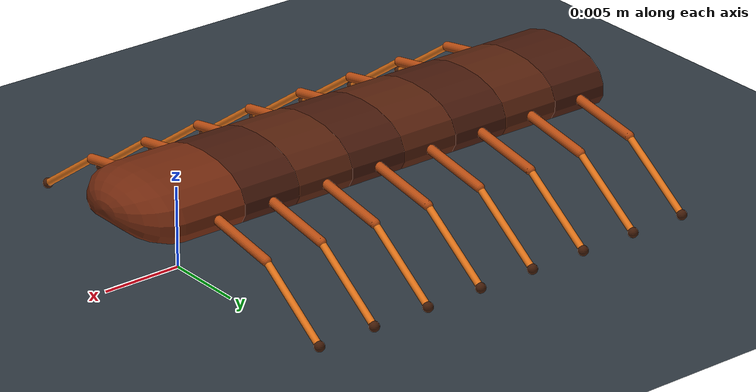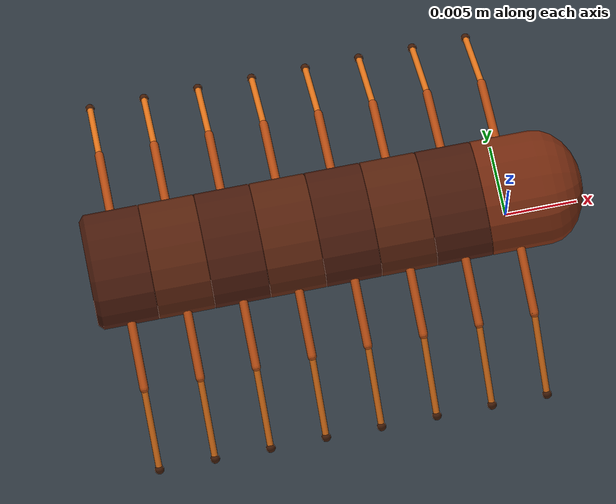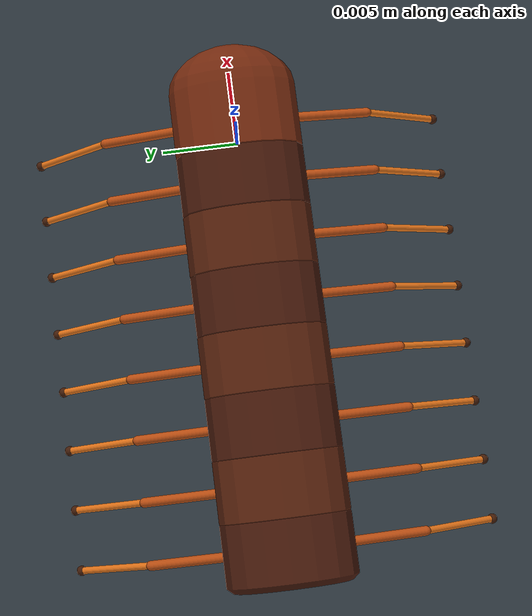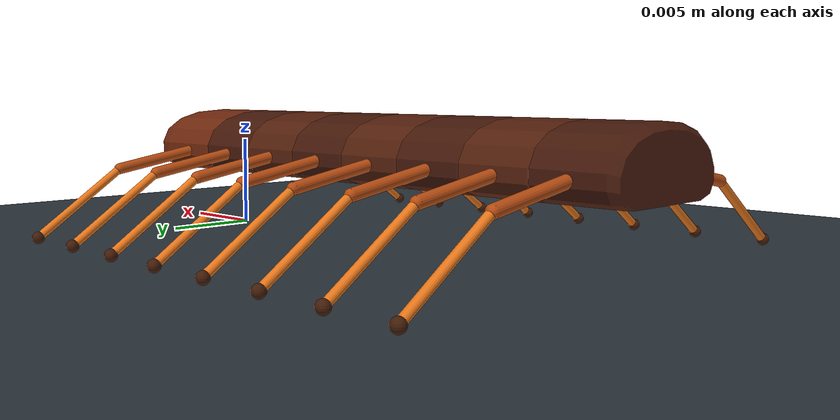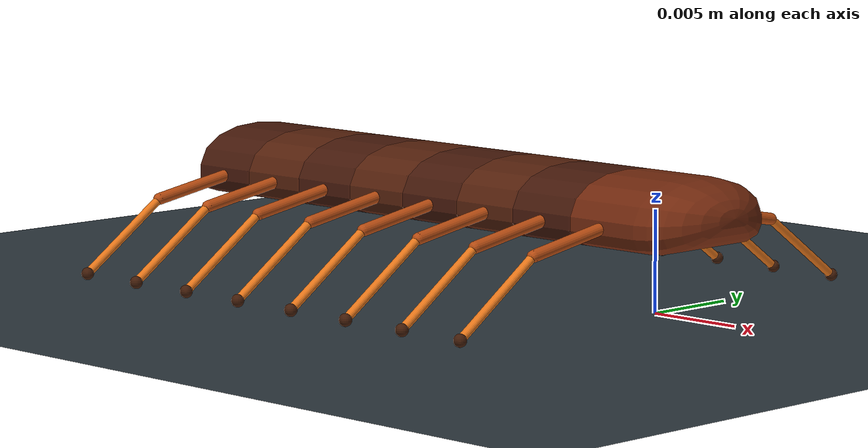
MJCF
<mujoco model="centipede_8">
  <!-- Assembly review; edit configs/assembly.json. -->
  <compiler angle="degree" autolimits="true" />
  <option timestep="0.0001" integrator="implicitfast" gravity="0 0 -9.81" iterations="80" tolerance="1e-10" cone="elliptic" />
  <size nuser_geom="2" nuser_actuator="1" />
  <statistic center="-0.0133 0 0.003" extent="0.035" />
  <custom>
    <text name="model_config" data="{&quot;segments&quot;:8,&quot;body&quot;:{&quot;shape&quot;:&quot;rounded_head&quot;,&quot;width_m&quot;:0.008,&quot;length_m&quot;:0.0044,&quot;height_m&quot;:0.0034,&quot;mass_kg&quot;:7.3e-05,&quot;head_mass_kg&quot;:9e-05,&quot;shoulder_y_m&quot;:0.0039,&quot;shoulder_z_m&quot;:-0.0006,&quot;front_extension_m&quot;:0.0028,&quot;pitch_m&quot;:0.0038,&quot;visual_membrane&quot;:true},&quot;leg&quot;:{&quot;upper_length_m&quot;:0.0046,&quot;lower_length_m&quot;:0.0058,&quot;upper_radius_m&quot;:0.0003,&quot;lower_radius_m&quot;:0.00022,&quot;foot_radius_m&quot;:0.00032,&quot;upper_mass_kg&quot;:1.5e-06,&quot;lower_mass_kg&quot;:1e-06,&quot;foot_mass_kg&quot;:1.5e-07,&quot;upper_down_deg&quot;:10,&quot;lower_down_deg&quot;:35,&quot;sweep_range_deg&quot;:[-40,40],&quot;lift_range_deg&quot;:[-25,40],&quot;knee_range_deg&quot;:[-20,50],&quot;torque_nm&quot;:{&quot;sweep&quot;:8e-06,&quot;lift&quot;:1.8e-05,&quot;knee&quot;:1e-05},&quot;damping_nms&quot;:{&quot;sweep&quot;:2e-07,&quot;lift&quot;:2e-07,&quot;knee&quot;:1e-07},&quot;armature_kgm2&quot;:{&quot;sweep&quot;:2e-11,&quot;lift&quot;:2e-11,&quot;knee&quot;:2e-12}},&quot;physics&quot;:{&quot;timestep_s&quot;:0.0001,&quot;gravity_m_s2&quot;:9.81,&quot;self_friction&quot;:[0.8,0.0001,1e-05],&quot;ground_friction&quot;:[0.8,0.0001,1e-05],&quot;contact_timeconst_s&quot;:0.0003,&quot;limit_timeconst_s&quot;:0.0008,&quot;contact_dampratio&quot;:1.0,&quot;spawn_gap_m&quot;:5e-05},&quot;spine&quot;:{&quot;yaw_range_deg&quot;:[-15,15],&quot;pitch_range_deg&quot;:[-8,8],&quot;active_yaw&quot;:true,&quot;yaw_torque_nm&quot;:1.5e-05,&quot;yaw_stiffness_nm_rad&quot;:2e-05,&quot;yaw_damping_nms&quot;:3e-07,&quot;pitch_stiffness_nm_rad&quot;:0.0001,&quot;pitch_damping_nms&quot;:5e-07,&quot;armature_kgm2&quot;:2e-11}}" />
  </custom>
  <default>
    <joint limited="true" solreflimit="0.0008 1" solimplimit="0.95 0.99 0.001" />
    <geom friction="0.8 0.0001 1e-05" condim="3" solref="0.0003 1" solimp="0.95 0.99 0.0001" margin="0" contype="1" conaffinity="1" />
  </default>
  <visual>
    <global offwidth="1200" offheight="900" />
    <map znear="0.005" zfar="30" />
    <scale jointlength="0.3" jointwidth="0.015" />
  </visual>
  <asset>
    <mesh name="head_envelope" inertia="convex" vertex="-0.0022 0 0.00136 -0.0022 0.001296 0.0012682 -0.0022 0.002448 0.0009316 -0.0022 0.00324 0.0003808 -0.0022 0.0036 -0.0003536 -0.0022 0.0036 -0.0009656 -0.0022 0.003312 -0.0014552 -0.0022 0.00252 -0.0017 -0.0022 -0.00252 -0.0017 -0.0022 -0.003312 -0.0014552 -0.0022 -0.0036 -0.0009656 -0.0022 -0.0036 -0.0003536 -0.0022 -0.00324 0.0003808 -0.0022 -0.002448 0.0009316 -0.0022 -0.001296 0.0012682 -0.001848 0 0.0017 -0.001848 0.00144 0.001598 -0.001848 0.00272 0.001224 -0.001848 0.0036 0.000612 -0.001848 0.004 -0.000204 -0.001848 0.004 -0.000884 -0.001848 0.00368 -0.001428 -0.001848 0.0028 -0.0017 -0.001848 -0.0028 -0.0017 -0.001848 -0.00368 -0.001428 -0.001848 -0.004 -0.000884 -0.001848 -0.004 -0.000204 -0.001848 -0.0036 0.000612 -0.001848 -0.00272 0.001224 -0.001848 -0.00144 0.001598 0.0022 0 0.0017 0.0022 0.00144 0.001598 0.0022 0.00272 0.001224 0.0022 0.0036 0.000612 0.0022 0.004 -0.000204 0.0022 0.004 -0.000884 0.0022 0.00368 -0.001428 0.0022 0.0028 -0.0017 0.0022 -0.0028 -0.0017 0.0022 -0.00368 -0.001428 0.0022 -0.004 -0.000884 0.0022 -0.004 -0.000204 0.0022 -0.0036 0.000612 0.0022 -0.00272 0.001224 0.0022 -0.00144 0.001598 0.00292469332629 0 0.00164207390469 0.00292469332629 0.00139093318986 0.00154354947041 0.00292469332629 0.00262731824751 0.00118229321138 0.00292469332629 0.00347733297464 0.000591146605689 0.00292469332629 0.00386370330516 -0.000197048868563 0.00292469332629 0.00386370330516 -0.00085387843044 0.00292469332629 0.00355460704074 -0.00137934207994 0.00292469332629 0.00270459231361 -0.00164207390469 0.00292469332629 -0.00270459231361 -0.00164207390469 0.00292469332629 -0.00355460704074 -0.00137934207994 0.00292469332629 -0.00386370330516 -0.00085387843044 0.00292469332629 -0.00386370330516 -0.000197048868563 0.00292469332629 -0.00347733297464 0.000591146605689 0.00292469332629 -0.00262731824751 0.00118229321138 0.00292469332629 -0.00139093318986 0.00154354947041 0.0036 0 0.00147224318643 0.0036 0.00124707658145 0.00138390859525 0.0036 0.00235558909829 0.00106001509423 0.0036 0.00311769145362 0.000530007547116 0.0036 0.00346410161514 -0.000176669182372 0.0036 0.00346410161514 -0.000765566456945 0.0036 0.00318697348593 -0.0012366842766 0.0036 0.0024248711306 -0.00147224318643 0.0036 -0.0024248711306 -0.00147224318643 0.0036 -0.00318697348593 -0.0012366842766 0.0036 -0.00346410161514 -0.000765566456945 0.0036 -0.00346410161514 -0.000176669182372 0.0036 -0.00311769145362 0.000530007547116 0.0036 -0.00235558909829 0.00106001509423 0.0036 -0.00124707658145 0.00138390859525 0.00417989898732 0 0.00120208152802 0.00417989898732 0.00101823376491 0.00112995663634 0.00417989898732 0.00192333044483 0.000865498700172 0.00417989898732 0.00254558441227 0.000432749350086 0.00417989898732 0.00282842712475 -0.000144249783362 0.00417989898732 0.00282842712475 -0.000625082394569 0.00417989898732 0.00260215295477 -0.00100974848353 0.00417989898732 0.00197989898732 -0.00120208152802 0.00417989898732 -0.00197989898732 -0.00120208152802 0.00417989898732 -0.00260215295477 -0.00100974848353 0.00417989898732 -0.00282842712475 -0.000625082394569 0.00417989898732 -0.00282842712475 -0.000144249783362 0.00417989898732 -0.00254558441227 0.000432749350086 0.00417989898732 -0.00192333044483 0.000865498700172 0.00417989898732 -0.00101823376491 0.00112995663634 0.0046248711306 0 0.00085 0.0046248711306 0.00072 0.000799 0.0046248711306 0.00136 0.000612 0.0046248711306 0.0018 0.000306 0.0046248711306 0.002 -0.000102 0.0046248711306 0.002 -0.000442 0.0046248711306 0.00184 -0.000714 0.0046248711306 0.0014 -0.00085 0.0046248711306 -0.0014 -0.00085 0.0046248711306 -0.00184 -0.000714 0.0046248711306 -0.002 -0.000442 0.0046248711306 -0.002 -0.000102 0.0046248711306 -0.0018 0.000306 0.0046248711306 -0.00136 0.000612 0.0046248711306 -0.00072 0.000799 0.00490459231361 0 0.000439992376674 0.00490459231361 0.000372699424948 0.000413592834074 0.00490459231361 0.000703987802679 0.000316794511205 0.00490459231361 0.000931748562369 0.000158397255603 0.00490459231361 0.00103527618041 -5.27990852009e-05 0.00490459231361 0.00103527618041 -0.000228796035871 0.00490459231361 0.000952454085977 -0.000369593596406 0.00490459231361 0.000724693326287 -0.000439992376674 0.00490459231361 -0.000724693326287 -0.000439992376674 0.00490459231361 -0.000952454085977 -0.000369593596406 0.00490459231361 -0.00103527618041 -0.000228796035871 0.00490459231361 -0.00103527618041 -5.27990852009e-05 0.00490459231361 -0.000931748562369 0.000158397255603 0.00490459231361 -0.000703987802679 0.000316794511205 0.00490459231361 -0.000372699424948 0.000413592834074 0.005 0 0" smoothnormal="true" />
    <mesh name="trunk_envelope" inertia="convex" vertex="-0.0022 0 0.00136 -0.0022 0.001296 0.0012682 -0.0022 0.002448 0.0009316 -0.0022 0.00324 0.0003808 -0.0022 0.0036 -0.0003536 -0.0022 0.0036 -0.0009656 -0.0022 0.003312 -0.0014552 -0.0022 0.00252 -0.0017 -0.0022 -0.00252 -0.0017 -0.0022 -0.003312 -0.0014552 -0.0022 -0.0036 -0.0009656 -0.0022 -0.0036 -0.0003536 -0.0022 -0.00324 0.0003808 -0.0022 -0.002448 0.0009316 -0.0022 -0.001296 0.0012682 -0.001848 0 0.0017 -0.001848 0.00144 0.001598 -0.001848 0.00272 0.001224 -0.001848 0.0036 0.000612 -0.001848 0.004 -0.000204 -0.001848 0.004 -0.000884 -0.001848 0.00368 -0.001428 -0.001848 0.0028 -0.0017 -0.001848 -0.0028 -0.0017 -0.001848 -0.00368 -0.001428 -0.001848 -0.004 -0.000884 -0.001848 -0.004 -0.000204 -0.001848 -0.0036 0.000612 -0.001848 -0.00272 0.001224 -0.001848 -0.00144 0.001598 0.001848 0 0.0017 0.001848 0.00144 0.001598 0.001848 0.00272 0.001224 0.001848 0.0036 0.000612 0.001848 0.004 -0.000204 0.001848 0.004 -0.000884 0.001848 0.00368 -0.001428 0.001848 0.0028 -0.0017 0.001848 -0.0028 -0.0017 0.001848 -0.00368 -0.001428 0.001848 -0.004 -0.000884 0.001848 -0.004 -0.000204 0.001848 -0.0036 0.000612 0.001848 -0.00272 0.001224 0.001848 -0.00144 0.001598 0.0022 0 0.00136 0.0022 0.001296 0.0012682 0.0022 0.002448 0.0009316 0.0022 0.00324 0.0003808 0.0022 0.0036 -0.0003536 0.0022 0.0036 -0.0009656 0.0022 0.003312 -0.0014552 0.0022 0.00252 -0.0017 0.0022 -0.00252 -0.0017 0.0022 -0.003312 -0.0014552 0.0022 -0.0036 -0.0009656 0.0022 -0.0036 -0.0003536 0.0022 -0.00324 0.0003808 0.0022 -0.002448 0.0009316 0.0022 -0.001296 0.0012682" smoothnormal="true" />
    <texture type="skybox" builtin="gradient" width="256" height="1536" rgb1="0.10 0.15 0.20" rgb2="0.35 0.40 0.44" />
    <texture name="ground" type="2d" builtin="checker" width="512" height="512" rgb1="0.16 0.20 0.23" rgb2="0.20 0.24 0.27" />
    <material name="ground" texture="ground" texrepeat="80 80" reflectance="0" />
  </asset>
  <worldbody>
    <light pos="0.02 -0.02 0.1" dir="0 0 -1" diffuse="0.9 0.9 0.9" directional="true" castshadow="false" />
    <geom name="floor" type="plane" size="0.5 0.5 0.001" material="ground" user="-1 0" friction="0.8 0.0001 1e-05" condim="6" priority="1" />
    <body name="segment_00" pos="0 0 0.0050955249481">
      <freejoint name="root" />
      <geom name="segment_00_body" type="mesh" pos="0 0 0" mass="9e-05" rgba="0.45 0.16 0.055 1" user="0 1" mesh="head_envelope" />
      <site name="segment_00_center" pos="0 0 0" size="0.00015" rgba="0 0 0 0" group="3" />
      <site name="head_tip" pos="0.005 0 0" size="0.00025" rgba="0 0 0 0" />
      <body name="segment_00_left_upper" pos="0 0.0039 -0.0006">
        <joint name="segment_00_left_sweep" type="hinge" axis="0 0 -1" range="-40 40" damping="2e-07" armature="2e-11" />
        <joint name="segment_00_left_lift" type="hinge" axis="1 0 0" range="-25 40" damping="2e-07" armature="2e-11" />
        <geom name="segment_00_left_upper_geom" type="capsule" fromto="0 0 0 0 0.00453011566386 -0.000798781617268" size="0.0003" mass="1.5e-06" rgba="0.72 0.30 0.07 1" user="0 2" />
        <body name="segment_00_left_lower" pos="0 0.00453011566386 -0.000798781617268">
          <joint name="segment_00_left_knee" type="hinge" axis="-1 0 0" range="-20 50" damping="1e-07" armature="2e-12" />
          <geom name="segment_00_left_lower_geom" type="capsule" fromto="0 0 0 0 0.00475108185688 -0.00332674333084" size="0.00022" mass="1e-06" rgba="0.90 0.46 0.10 1" user="0 2" />
          <geom name="segment_00_left_foot" type="sphere" pos="0 0.00475108185688 -0.00332674333084" size="0.00032" mass="1.5e-07" rgba="0.26 0.11 0.035 1" user="0 3" />
          <site name="segment_00_left_tip" pos="0 0.00475108185688 -0.00332674333084" size="0.00015" rgba="0 0 0 0" group="3" />
        </body>
      </body>
      <body name="segment_00_right_upper" pos="0 -0.0039 -0.0006">
        <joint name="segment_00_right_sweep" type="hinge" axis="0 0 1" range="-40 40" damping="2e-07" armature="2e-11" />
        <joint name="segment_00_right_lift" type="hinge" axis="-1 0 0" range="-25 40" damping="2e-07" armature="2e-11" />
        <geom name="segment_00_right_upper_geom" type="capsule" fromto="0 0 0 0 -0.00453011566386 -0.000798781617268" size="0.0003" mass="1.5e-06" rgba="0.72 0.30 0.07 1" user="0 2" />
        <body name="segment_00_right_lower" pos="0 -0.00453011566386 -0.000798781617268">
          <joint name="segment_00_right_knee" type="hinge" axis="1 0 0" range="-20 50" damping="1e-07" armature="2e-12" />
          <geom name="segment_00_right_lower_geom" type="capsule" fromto="0 0 0 0 -0.00475108185688 -0.00332674333084" size="0.00022" mass="1e-06" rgba="0.90 0.46 0.10 1" user="0 2" />
          <geom name="segment_00_right_foot" type="sphere" pos="0 -0.00475108185688 -0.00332674333084" size="0.00032" mass="1.5e-07" rgba="0.26 0.11 0.035 1" user="0 3" />
          <site name="segment_00_right_tip" pos="0 -0.00475108185688 -0.00332674333084" size="0.00015" rgba="0 0 0 0" group="3" />
        </body>
      </body>
      <body name="segment_01" pos="-0.0019 0 0">
        <joint name="segment_01_yaw" type="hinge" axis="0 0 1" range="-15 15" damping="3e-07" armature="2e-11" stiffness="2e-05" springref="0" />
        <joint name="segment_01_pitch" type="hinge" axis="0 1 0" range="-8 8" stiffness="0.0001" springref="0" damping="5e-07" armature="2e-11" />
        <geom name="segment_01_body" type="mesh" pos="-0.0019 0 0" mass="7.3e-05" rgba="0.28 0.10 0.045 1" user="1 1" mesh="trunk_envelope" />
        <geom name="segment_01_membrane" type="ellipsoid" pos="0 0 0" size="0.00062210476888 0.00368 0.00153" mass="0" contype="0" conaffinity="0" rgba="0.20 0.065 0.025 1" group="2" user="1 4" />
        <site name="segment_01_center" pos="-0.0019 0 0" size="0.00015" rgba="0 0 0 0" group="3" />
        <body name="segment_01_left_upper" pos="-0.0019 0.0039 -0.0006">
          <joint name="segment_01_left_sweep" type="hinge" axis="0 0 -1" range="-40 40" damping="2e-07" armature="2e-11" />
          <joint name="segment_01_left_lift" type="hinge" axis="1 0 0" range="-25 40" damping="2e-07" armature="2e-11" />
          <geom name="segment_01_left_upper_geom" type="capsule" fromto="0 0 0 0 0.00453011566386 -0.000798781617268" size="0.0003" mass="1.5e-06" rgba="0.72 0.30 0.07 1" user="1 2" />
          <body name="segment_01_left_lower" pos="0 0.00453011566386 -0.000798781617268">
            <joint name="segment_01_left_knee" type="hinge" axis="-1 0 0" range="-20 50" damping="1e-07" armature="2e-12" />
            <geom name="segment_01_left_lower_geom" type="capsule" fromto="0 0 0 0 0.00475108185688 -0.00332674333084" size="0.00022" mass="1e-06" rgba="0.90 0.46 0.10 1" user="1 2" />
            <geom name="segment_01_left_foot" type="sphere" pos="0 0.00475108185688 -0.00332674333084" size="0.00032" mass="1.5e-07" rgba="0.26 0.11 0.035 1" user="1 3" />
            <site name="segment_01_left_tip" pos="0 0.00475108185688 -0.00332674333084" size="0.00015" rgba="0 0 0 0" group="3" />
          </body>
        </body>
        <body name="segment_01_right_upper" pos="-0.0019 -0.0039 -0.0006">
          <joint name="segment_01_right_sweep" type="hinge" axis="0 0 1" range="-40 40" damping="2e-07" armature="2e-11" />
          <joint name="segment_01_right_lift" type="hinge" axis="-1 0 0" range="-25 40" damping="2e-07" armature="2e-11" />
          <geom name="segment_01_right_upper_geom" type="capsule" fromto="0 0 0 0 -0.00453011566386 -0.000798781617268" size="0.0003" mass="1.5e-06" rgba="0.72 0.30 0.07 1" user="1 2" />
          <body name="segment_01_right_lower" pos="0 -0.00453011566386 -0.000798781617268">
            <joint name="segment_01_right_knee" type="hinge" axis="1 0 0" range="-20 50" damping="1e-07" armature="2e-12" />
            <geom name="segment_01_right_lower_geom" type="capsule" fromto="0 0 0 0 -0.00475108185688 -0.00332674333084" size="0.00022" mass="1e-06" rgba="0.90 0.46 0.10 1" user="1 2" />
            <geom name="segment_01_right_foot" type="sphere" pos="0 -0.00475108185688 -0.00332674333084" size="0.00032" mass="1.5e-07" rgba="0.26 0.11 0.035 1" user="1 3" />
            <site name="segment_01_right_tip" pos="0 -0.00475108185688 -0.00332674333084" size="0.00015" rgba="0 0 0 0" group="3" />
          </body>
        </body>
        <body name="segment_02" pos="-0.0038 0 0">
          <joint name="segment_02_yaw" type="hinge" axis="0 0 1" range="-15 15" damping="3e-07" armature="2e-11" stiffness="2e-05" springref="0" />
          <joint name="segment_02_pitch" type="hinge" axis="0 1 0" range="-8 8" stiffness="0.0001" springref="0" damping="5e-07" armature="2e-11" />
          <geom name="segment_02_body" type="mesh" pos="-0.0019 0 0" mass="7.3e-05" rgba="0.34 0.13 0.05 1" user="2 1" mesh="trunk_envelope" />
          <geom name="segment_02_membrane" type="ellipsoid" pos="0 0 0" size="0.00062210476888 0.00368 0.00153" mass="0" contype="0" conaffinity="0" rgba="0.20 0.065 0.025 1" group="2" user="2 4" />
          <site name="segment_02_center" pos="-0.0019 0 0" size="0.00015" rgba="0 0 0 0" group="3" />
          <body name="segment_02_left_upper" pos="-0.0019 0.0039 -0.0006">
            <joint name="segment_02_left_sweep" type="hinge" axis="0 0 -1" range="-40 40" damping="2e-07" armature="2e-11" />
            <joint name="segment_02_left_lift" type="hinge" axis="1 0 0" range="-25 40" damping="2e-07" armature="2e-11" />
            <geom name="segment_02_left_upper_geom" type="capsule" fromto="0 0 0 0 0.00453011566386 -0.000798781617268" size="0.0003" mass="1.5e-06" rgba="0.72 0.30 0.07 1" user="2 2" />
            <body name="segment_02_left_lower" pos="0 0.00453011566386 -0.000798781617268">
              <joint name="segment_02_left_knee" type="hinge" axis="-1 0 0" range="-20 50" damping="1e-07" armature="2e-12" />
              <geom name="segment_02_left_lower_geom" type="capsule" fromto="0 0 0 0 0.00475108185688 -0.00332674333084" size="0.00022" mass="1e-06" rgba="0.90 0.46 0.10 1" user="2 2" />
              <geom name="segment_02_left_foot" type="sphere" pos="0 0.00475108185688 -0.00332674333084" size="0.00032" mass="1.5e-07" rgba="0.26 0.11 0.035 1" user="2 3" />
              <site name="segment_02_left_tip" pos="0 0.00475108185688 -0.00332674333084" size="0.00015" rgba="0 0 0 0" group="3" />
            </body>
          </body>
          <body name="segment_02_right_upper" pos="-0.0019 -0.0039 -0.0006">
            <joint name="segment_02_right_sweep" type="hinge" axis="0 0 1" range="-40 40" damping="2e-07" armature="2e-11" />
            <joint name="segment_02_right_lift" type="hinge" axis="-1 0 0" range="-25 40" damping="2e-07" armature="2e-11" />
            <geom name="segment_02_right_upper_geom" type="capsule" fromto="0 0 0 0 -0.00453011566386 -0.000798781617268" size="0.0003" mass="1.5e-06" rgba="0.72 0.30 0.07 1" user="2 2" />
            <body name="segment_02_right_lower" pos="0 -0.00453011566386 -0.000798781617268">
              <joint name="segment_02_right_knee" type="hinge" axis="1 0 0" range="-20 50" damping="1e-07" armature="2e-12" />
              <geom name="segment_02_right_lower_geom" type="capsule" fromto="0 0 0 0 -0.00475108185688 -0.00332674333084" size="0.00022" mass="1e-06" rgba="0.90 0.46 0.10 1" user="2 2" />
              <geom name="segment_02_right_foot" type="sphere" pos="0 -0.00475108185688 -0.00332674333084" size="0.00032" mass="1.5e-07" rgba="0.26 0.11 0.035 1" user="2 3" />
              <site name="segment_02_right_tip" pos="0 -0.00475108185688 -0.00332674333084" size="0.00015" rgba="0 0 0 0" group="3" />
            </body>
          </body>
          <body name="segment_03" pos="-0.0038 0 0">
            <joint name="segment_03_yaw" type="hinge" axis="0 0 1" range="-15 15" damping="3e-07" armature="2e-11" stiffness="2e-05" springref="0" />
            <joint name="segment_03_pitch" type="hinge" axis="0 1 0" range="-8 8" stiffness="0.0001" springref="0" damping="5e-07" armature="2e-11" />
            <geom name="segment_03_body" type="mesh" pos="-0.0019 0 0" mass="7.3e-05" rgba="0.28 0.10 0.045 1" user="3 1" mesh="trunk_envelope" />
            <geom name="segment_03_membrane" type="ellipsoid" pos="0 0 0" size="0.00062210476888 0.00368 0.00153" mass="0" contype="0" conaffinity="0" rgba="0.20 0.065 0.025 1" group="2" user="3 4" />
            <site name="segment_03_center" pos="-0.0019 0 0" size="0.00015" rgba="0 0 0 0" group="3" />
            <body name="segment_03_left_upper" pos="-0.0019 0.0039 -0.0006">
              <joint name="segment_03_left_sweep" type="hinge" axis="0 0 -1" range="-40 40" damping="2e-07" armature="2e-11" />
              <joint name="segment_03_left_lift" type="hinge" axis="1 0 0" range="-25 40" damping="2e-07" armature="2e-11" />
              <geom name="segment_03_left_upper_geom" type="capsule" fromto="0 0 0 0 0.00453011566386 -0.000798781617268" size="0.0003" mass="1.5e-06" rgba="0.72 0.30 0.07 1" user="3 2" />
              <body name="segment_03_left_lower" pos="0 0.00453011566386 -0.000798781617268">
                <joint name="segment_03_left_knee" type="hinge" axis="-1 0 0" range="-20 50" damping="1e-07" armature="2e-12" />
                <geom name="segment_03_left_lower_geom" type="capsule" fromto="0 0 0 0 0.00475108185688 -0.00332674333084" size="0.00022" mass="1e-06" rgba="0.90 0.46 0.10 1" user="3 2" />
                <geom name="segment_03_left_foot" type="sphere" pos="0 0.00475108185688 -0.00332674333084" size="0.00032" mass="1.5e-07" rgba="0.26 0.11 0.035 1" user="3 3" />
                <site name="segment_03_left_tip" pos="0 0.00475108185688 -0.00332674333084" size="0.00015" rgba="0 0 0 0" group="3" />
              </body>
            </body>
            <body name="segment_03_right_upper" pos="-0.0019 -0.0039 -0.0006">
              <joint name="segment_03_right_sweep" type="hinge" axis="0 0 1" range="-40 40" damping="2e-07" armature="2e-11" />
              <joint name="segment_03_right_lift" type="hinge" axis="-1 0 0" range="-25 40" damping="2e-07" armature="2e-11" />
              <geom name="segment_03_right_upper_geom" type="capsule" fromto="0 0 0 0 -0.00453011566386 -0.000798781617268" size="0.0003" mass="1.5e-06" rgba="0.72 0.30 0.07 1" user="3 2" />
              <body name="segment_03_right_lower" pos="0 -0.00453011566386 -0.000798781617268">
                <joint name="segment_03_right_knee" type="hinge" axis="1 0 0" range="-20 50" damping="1e-07" armature="2e-12" />
                <geom name="segment_03_right_lower_geom" type="capsule" fromto="0 0 0 0 -0.00475108185688 -0.00332674333084" size="0.00022" mass="1e-06" rgba="0.90 0.46 0.10 1" user="3 2" />
                <geom name="segment_03_right_foot" type="sphere" pos="0 -0.00475108185688 -0.00332674333084" size="0.00032" mass="1.5e-07" rgba="0.26 0.11 0.035 1" user="3 3" />
                <site name="segment_03_right_tip" pos="0 -0.00475108185688 -0.00332674333084" size="0.00015" rgba="0 0 0 0" group="3" />
              </body>
            </body>
            <body name="segment_04" pos="-0.0038 0 0">
              <joint name="segment_04_yaw" type="hinge" axis="0 0 1" range="-15 15" damping="3e-07" armature="2e-11" stiffness="2e-05" springref="0" />
              <joint name="segment_04_pitch" type="hinge" axis="0 1 0" range="-8 8" stiffness="0.0001" springref="0" damping="5e-07" armature="2e-11" />
              <geom name="segment_04_body" type="mesh" pos="-0.0019 0 0" mass="7.3e-05" rgba="0.34 0.13 0.05 1" user="4 1" mesh="trunk_envelope" />
              <geom name="segment_04_membrane" type="ellipsoid" pos="0 0 0" size="0.00062210476888 0.00368 0.00153" mass="0" contype="0" conaffinity="0" rgba="0.20 0.065 0.025 1" group="2" user="4 4" />
              <site name="segment_04_center" pos="-0.0019 0 0" size="0.00015" rgba="0 0 0 0" group="3" />
              <body name="segment_04_left_upper" pos="-0.0019 0.0039 -0.0006">
                <joint name="segment_04_left_sweep" type="hinge" axis="0 0 -1" range="-40 40" damping="2e-07" armature="2e-11" />
                <joint name="segment_04_left_lift" type="hinge" axis="1 0 0" range="-25 40" damping="2e-07" armature="2e-11" />
                <geom name="segment_04_left_upper_geom" type="capsule" fromto="0 0 0 0 0.00453011566386 -0.000798781617268" size="0.0003" mass="1.5e-06" rgba="0.72 0.30 0.07 1" user="4 2" />
                <body name="segment_04_left_lower" pos="0 0.00453011566386 -0.000798781617268">
                  <joint name="segment_04_left_knee" type="hinge" axis="-1 0 0" range="-20 50" damping="1e-07" armature="2e-12" />
                  <geom name="segment_04_left_lower_geom" type="capsule" fromto="0 0 0 0 0.00475108185688 -0.00332674333084" size="0.00022" mass="1e-06" rgba="0.90 0.46 0.10 1" user="4 2" />
                  <geom name="segment_04_left_foot" type="sphere" pos="0 0.00475108185688 -0.00332674333084" size="0.00032" mass="1.5e-07" rgba="0.26 0.11 0.035 1" user="4 3" />
                  <site name="segment_04_left_tip" pos="0 0.00475108185688 -0.00332674333084" size="0.00015" rgba="0 0 0 0" group="3" />
                </body>
              </body>
              <body name="segment_04_right_upper" pos="-0.0019 -0.0039 -0.0006">
                <joint name="segment_04_right_sweep" type="hinge" axis="0 0 1" range="-40 40" damping="2e-07" armature="2e-11" />
                <joint name="segment_04_right_lift" type="hinge" axis="-1 0 0" range="-25 40" damping="2e-07" armature="2e-11" />
                <geom name="segment_04_right_upper_geom" type="capsule" fromto="0 0 0 0 -0.00453011566386 -0.000798781617268" size="0.0003" mass="1.5e-06" rgba="0.72 0.30 0.07 1" user="4 2" />
                <body name="segment_04_right_lower" pos="0 -0.00453011566386 -0.000798781617268">
                  <joint name="segment_04_right_knee" type="hinge" axis="1 0 0" range="-20 50" damping="1e-07" armature="2e-12" />
                  <geom name="segment_04_right_lower_geom" type="capsule" fromto="0 0 0 0 -0.00475108185688 -0.00332674333084" size="0.00022" mass="1e-06" rgba="0.90 0.46 0.10 1" user="4 2" />
                  <geom name="segment_04_right_foot" type="sphere" pos="0 -0.00475108185688 -0.00332674333084" size="0.00032" mass="1.5e-07" rgba="0.26 0.11 0.035 1" user="4 3" />
                  <site name="segment_04_right_tip" pos="0 -0.00475108185688 -0.00332674333084" size="0.00015" rgba="0 0 0 0" group="3" />
                </body>
              </body>
              <body name="segment_05" pos="-0.0038 0 0">
                <joint name="segment_05_yaw" type="hinge" axis="0 0 1" range="-15 15" damping="3e-07" armature="2e-11" stiffness="2e-05" springref="0" />
                <joint name="segment_05_pitch" type="hinge" axis="0 1 0" range="-8 8" stiffness="0.0001" springref="0" damping="5e-07" armature="2e-11" />
                <geom name="segment_05_body" type="mesh" pos="-0.0019 0 0" mass="7.3e-05" rgba="0.28 0.10 0.045 1" user="5 1" mesh="trunk_envelope" />
                <geom name="segment_05_membrane" type="ellipsoid" pos="0 0 0" size="0.00062210476888 0.00368 0.00153" mass="0" contype="0" conaffinity="0" rgba="0.20 0.065 0.025 1" group="2" user="5 4" />
                <site name="segment_05_center" pos="-0.0019 0 0" size="0.00015" rgba="0 0 0 0" group="3" />
                <body name="segment_05_left_upper" pos="-0.0019 0.0039 -0.0006">
                  <joint name="segment_05_left_sweep" type="hinge" axis="0 0 -1" range="-40 40" damping="2e-07" armature="2e-11" />
                  <joint name="segment_05_left_lift" type="hinge" axis="1 0 0" range="-25 40" damping="2e-07" armature="2e-11" />
                  <geom name="segment_05_left_upper_geom" type="capsule" fromto="0 0 0 0 0.00453011566386 -0.000798781617268" size="0.0003" mass="1.5e-06" rgba="0.72 0.30 0.07 1" user="5 2" />
                  <body name="segment_05_left_lower" pos="0 0.00453011566386 -0.000798781617268">
                    <joint name="segment_05_left_knee" type="hinge" axis="-1 0 0" range="-20 50" damping="1e-07" armature="2e-12" />
                    <geom name="segment_05_left_lower_geom" type="capsule" fromto="0 0 0 0 0.00475108185688 -0.00332674333084" size="0.00022" mass="1e-06" rgba="0.90 0.46 0.10 1" user="5 2" />
                    <geom name="segment_05_left_foot" type="sphere" pos="0 0.00475108185688 -0.00332674333084" size="0.00032" mass="1.5e-07" rgba="0.26 0.11 0.035 1" user="5 3" />
                    <site name="segment_05_left_tip" pos="0 0.00475108185688 -0.00332674333084" size="0.00015" rgba="0 0 0 0" group="3" />
                  </body>
                </body>
                <body name="segment_05_right_upper" pos="-0.0019 -0.0039 -0.0006">
                  <joint name="segment_05_right_sweep" type="hinge" axis="0 0 1" range="-40 40" damping="2e-07" armature="2e-11" />
                  <joint name="segment_05_right_lift" type="hinge" axis="-1 0 0" range="-25 40" damping="2e-07" armature="2e-11" />
                  <geom name="segment_05_right_upper_geom" type="capsule" fromto="0 0 0 0 -0.00453011566386 -0.000798781617268" size="0.0003" mass="1.5e-06" rgba="0.72 0.30 0.07 1" user="5 2" />
                  <body name="segment_05_right_lower" pos="0 -0.00453011566386 -0.000798781617268">
                    <joint name="segment_05_right_knee" type="hinge" axis="1 0 0" range="-20 50" damping="1e-07" armature="2e-12" />
                    <geom name="segment_05_right_lower_geom" type="capsule" fromto="0 0 0 0 -0.00475108185688 -0.00332674333084" size="0.00022" mass="1e-06" rgba="0.90 0.46 0.10 1" user="5 2" />
                    <geom name="segment_05_right_foot" type="sphere" pos="0 -0.00475108185688 -0.00332674333084" size="0.00032" mass="1.5e-07" rgba="0.26 0.11 0.035 1" user="5 3" />
                    <site name="segment_05_right_tip" pos="0 -0.00475108185688 -0.00332674333084" size="0.00015" rgba="0 0 0 0" group="3" />
                  </body>
                </body>
                <body name="segment_06" pos="-0.0038 0 0">
                  <joint name="segment_06_yaw" type="hinge" axis="0 0 1" range="-15 15" damping="3e-07" armature="2e-11" stiffness="2e-05" springref="0" />
                  <joint name="segment_06_pitch" type="hinge" axis="0 1 0" range="-8 8" stiffness="0.0001" springref="0" damping="5e-07" armature="2e-11" />
                  <geom name="segment_06_body" type="mesh" pos="-0.0019 0 0" mass="7.3e-05" rgba="0.34 0.13 0.05 1" user="6 1" mesh="trunk_envelope" />
                  <geom name="segment_06_membrane" type="ellipsoid" pos="0 0 0" size="0.00062210476888 0.00368 0.00153" mass="0" contype="0" conaffinity="0" rgba="0.20 0.065 0.025 1" group="2" user="6 4" />
                  <site name="segment_06_center" pos="-0.0019 0 0" size="0.00015" rgba="0 0 0 0" group="3" />
                  <body name="segment_06_left_upper" pos="-0.0019 0.0039 -0.0006">
                    <joint name="segment_06_left_sweep" type="hinge" axis="0 0 -1" range="-40 40" damping="2e-07" armature="2e-11" />
                    <joint name="segment_06_left_lift" type="hinge" axis="1 0 0" range="-25 40" damping="2e-07" armature="2e-11" />
                    <geom name="segment_06_left_upper_geom" type="capsule" fromto="0 0 0 0 0.00453011566386 -0.000798781617268" size="0.0003" mass="1.5e-06" rgba="0.72 0.30 0.07 1" user="6 2" />
                    <body name="segment_06_left_lower" pos="0 0.00453011566386 -0.000798781617268">
                      <joint name="segment_06_left_knee" type="hinge" axis="-1 0 0" range="-20 50" damping="1e-07" armature="2e-12" />
                      <geom name="segment_06_left_lower_geom" type="capsule" fromto="0 0 0 0 0.00475108185688 -0.00332674333084" size="0.00022" mass="1e-06" rgba="0.90 0.46 0.10 1" user="6 2" />
                      <geom name="segment_06_left_foot" type="sphere" pos="0 0.00475108185688 -0.00332674333084" size="0.00032" mass="1.5e-07" rgba="0.26 0.11 0.035 1" user="6 3" />
                      <site name="segment_06_left_tip" pos="0 0.00475108185688 -0.00332674333084" size="0.00015" rgba="0 0 0 0" group="3" />
                    </body>
                  </body>
                  <body name="segment_06_right_upper" pos="-0.0019 -0.0039 -0.0006">
                    <joint name="segment_06_right_sweep" type="hinge" axis="0 0 1" range="-40 40" damping="2e-07" armature="2e-11" />
                    <joint name="segment_06_right_lift" type="hinge" axis="-1 0 0" range="-25 40" damping="2e-07" armature="2e-11" />
                    <geom name="segment_06_right_upper_geom" type="capsule" fromto="0 0 0 0 -0.00453011566386 -0.000798781617268" size="0.0003" mass="1.5e-06" rgba="0.72 0.30 0.07 1" user="6 2" />
                    <body name="segment_06_right_lower" pos="0 -0.00453011566386 -0.000798781617268">
                      <joint name="segment_06_right_knee" type="hinge" axis="1 0 0" range="-20 50" damping="1e-07" armature="2e-12" />
                      <geom name="segment_06_right_lower_geom" type="capsule" fromto="0 0 0 0 -0.00475108185688 -0.00332674333084" size="0.00022" mass="1e-06" rgba="0.90 0.46 0.10 1" user="6 2" />
                      <geom name="segment_06_right_foot" type="sphere" pos="0 -0.00475108185688 -0.00332674333084" size="0.00032" mass="1.5e-07" rgba="0.26 0.11 0.035 1" user="6 3" />
                      <site name="segment_06_right_tip" pos="0 -0.00475108185688 -0.00332674333084" size="0.00015" rgba="0 0 0 0" group="3" />
                    </body>
                  </body>
                  <body name="segment_07" pos="-0.0038 0 0">
                    <joint name="segment_07_yaw" type="hinge" axis="0 0 1" range="-15 15" damping="3e-07" armature="2e-11" stiffness="2e-05" springref="0" />
                    <joint name="segment_07_pitch" type="hinge" axis="0 1 0" range="-8 8" stiffness="0.0001" springref="0" damping="5e-07" armature="2e-11" />
                    <geom name="segment_07_body" type="mesh" pos="-0.0019 0 0" mass="7.3e-05" rgba="0.28 0.10 0.045 1" user="7 1" mesh="trunk_envelope" />
                    <geom name="segment_07_membrane" type="ellipsoid" pos="0 0 0" size="0.00062210476888 0.00368 0.00153" mass="0" contype="0" conaffinity="0" rgba="0.20 0.065 0.025 1" group="2" user="7 4" />
                    <site name="segment_07_center" pos="-0.0019 0 0" size="0.00015" rgba="0 0 0 0" group="3" />
                    <body name="segment_07_left_upper" pos="-0.0019 0.0039 -0.0006">
                      <joint name="segment_07_left_sweep" type="hinge" axis="0 0 -1" range="-40 40" damping="2e-07" armature="2e-11" />
                      <joint name="segment_07_left_lift" type="hinge" axis="1 0 0" range="-25 40" damping="2e-07" armature="2e-11" />
                      <geom name="segment_07_left_upper_geom" type="capsule" fromto="0 0 0 0 0.00453011566386 -0.000798781617268" size="0.0003" mass="1.5e-06" rgba="0.72 0.30 0.07 1" user="7 2" />
                      <body name="segment_07_left_lower" pos="0 0.00453011566386 -0.000798781617268">
                        <joint name="segment_07_left_knee" type="hinge" axis="-1 0 0" range="-20 50" damping="1e-07" armature="2e-12" />
                        <geom name="segment_07_left_lower_geom" type="capsule" fromto="0 0 0 0 0.00475108185688 -0.00332674333084" size="0.00022" mass="1e-06" rgba="0.90 0.46 0.10 1" user="7 2" />
                        <geom name="segment_07_left_foot" type="sphere" pos="0 0.00475108185688 -0.00332674333084" size="0.00032" mass="1.5e-07" rgba="0.26 0.11 0.035 1" user="7 3" />
                        <site name="segment_07_left_tip" pos="0 0.00475108185688 -0.00332674333084" size="0.00015" rgba="0 0 0 0" group="3" />
                      </body>
                    </body>
                    <body name="segment_07_right_upper" pos="-0.0019 -0.0039 -0.0006">
                      <joint name="segment_07_right_sweep" type="hinge" axis="0 0 1" range="-40 40" damping="2e-07" armature="2e-11" />
                      <joint name="segment_07_right_lift" type="hinge" axis="-1 0 0" range="-25 40" damping="2e-07" armature="2e-11" />
                      <geom name="segment_07_right_upper_geom" type="capsule" fromto="0 0 0 0 -0.00453011566386 -0.000798781617268" size="0.0003" mass="1.5e-06" rgba="0.72 0.30 0.07 1" user="7 2" />
                      <body name="segment_07_right_lower" pos="0 -0.00453011566386 -0.000798781617268">
                        <joint name="segment_07_right_knee" type="hinge" axis="1 0 0" range="-20 50" damping="1e-07" armature="2e-12" />
                        <geom name="segment_07_right_lower_geom" type="capsule" fromto="0 0 0 0 -0.00475108185688 -0.00332674333084" size="0.00022" mass="1e-06" rgba="0.90 0.46 0.10 1" user="7 2" />
                        <geom name="segment_07_right_foot" type="sphere" pos="0 -0.00475108185688 -0.00332674333084" size="0.00032" mass="1.5e-07" rgba="0.26 0.11 0.035 1" user="7 3" />
                        <site name="segment_07_right_tip" pos="0 -0.00475108185688 -0.00332674333084" size="0.00015" rgba="0 0 0 0" group="3" />
                      </body>
                    </body>
                  </body>
                </body>
              </body>
            </body>
          </body>
        </body>
      </body>
    </body>
  </worldbody>
  <actuator>
    <motor name="segment_00_left_sweep_motor" joint="segment_00_left_sweep" gear="8e-06" ctrlrange="-1 1" ctrllimited="true" forcerange="-1 1" forcelimited="true" user="0" />
    <motor name="segment_00_left_lift_motor" joint="segment_00_left_lift" gear="1.8e-05" ctrlrange="-1 1" ctrllimited="true" forcerange="-1 1" forcelimited="true" user="0" />
    <motor name="segment_00_left_knee_motor" joint="segment_00_left_knee" gear="1e-05" ctrlrange="-1 1" ctrllimited="true" forcerange="-1 1" forcelimited="true" user="0" />
    <motor name="segment_00_right_sweep_motor" joint="segment_00_right_sweep" gear="8e-06" ctrlrange="-1 1" ctrllimited="true" forcerange="-1 1" forcelimited="true" user="0" />
    <motor name="segment_00_right_lift_motor" joint="segment_00_right_lift" gear="1.8e-05" ctrlrange="-1 1" ctrllimited="true" forcerange="-1 1" forcelimited="true" user="0" />
    <motor name="segment_00_right_knee_motor" joint="segment_00_right_knee" gear="1e-05" ctrlrange="-1 1" ctrllimited="true" forcerange="-1 1" forcelimited="true" user="0" />
    <motor name="segment_01_yaw_motor" joint="segment_01_yaw" gear="1.5e-05" ctrlrange="-1 1" ctrllimited="true" forcerange="-1 1" forcelimited="true" user="1" />
    <motor name="segment_01_left_sweep_motor" joint="segment_01_left_sweep" gear="8e-06" ctrlrange="-1 1" ctrllimited="true" forcerange="-1 1" forcelimited="true" user="1" />
    <motor name="segment_01_left_lift_motor" joint="segment_01_left_lift" gear="1.8e-05" ctrlrange="-1 1" ctrllimited="true" forcerange="-1 1" forcelimited="true" user="1" />
    <motor name="segment_01_left_knee_motor" joint="segment_01_left_knee" gear="1e-05" ctrlrange="-1 1" ctrllimited="true" forcerange="-1 1" forcelimited="true" user="1" />
    <motor name="segment_01_right_sweep_motor" joint="segment_01_right_sweep" gear="8e-06" ctrlrange="-1 1" ctrllimited="true" forcerange="-1 1" forcelimited="true" user="1" />
    <motor name="segment_01_right_lift_motor" joint="segment_01_right_lift" gear="1.8e-05" ctrlrange="-1 1" ctrllimited="true" forcerange="-1 1" forcelimited="true" user="1" />
    <motor name="segment_01_right_knee_motor" joint="segment_01_right_knee" gear="1e-05" ctrlrange="-1 1" ctrllimited="true" forcerange="-1 1" forcelimited="true" user="1" />
    <motor name="segment_02_yaw_motor" joint="segment_02_yaw" gear="1.5e-05" ctrlrange="-1 1" ctrllimited="true" forcerange="-1 1" forcelimited="true" user="2" />
    <motor name="segment_02_left_sweep_motor" joint="segment_02_left_sweep" gear="8e-06" ctrlrange="-1 1" ctrllimited="true" forcerange="-1 1" forcelimited="true" user="2" />
    <motor name="segment_02_left_lift_motor" joint="segment_02_left_lift" gear="1.8e-05" ctrlrange="-1 1" ctrllimited="true" forcerange="-1 1" forcelimited="true" user="2" />
    <motor name="segment_02_left_knee_motor" joint="segment_02_left_knee" gear="1e-05" ctrlrange="-1 1" ctrllimited="true" forcerange="-1 1" forcelimited="true" user="2" />
    <motor name="segment_02_right_sweep_motor" joint="segment_02_right_sweep" gear="8e-06" ctrlrange="-1 1" ctrllimited="true" forcerange="-1 1" forcelimited="true" user="2" />
    <motor name="segment_02_right_lift_motor" joint="segment_02_right_lift" gear="1.8e-05" ctrlrange="-1 1" ctrllimited="true" forcerange="-1 1" forcelimited="true" user="2" />
    <motor name="segment_02_right_knee_motor" joint="segment_02_right_knee" gear="1e-05" ctrlrange="-1 1" ctrllimited="true" forcerange="-1 1" forcelimited="true" user="2" />
    <motor name="segment_03_yaw_motor" joint="segment_03_yaw" gear="1.5e-05" ctrlrange="-1 1" ctrllimited="true" forcerange="-1 1" forcelimited="true" user="3" />
    <motor name="segment_03_left_sweep_motor" joint="segment_03_left_sweep" gear="8e-06" ctrlrange="-1 1" ctrllimited="true" forcerange="-1 1" forcelimited="true" user="3" />
    <motor name="segment_03_left_lift_motor" joint="segment_03_left_lift" gear="1.8e-05" ctrlrange="-1 1" ctrllimited="true" forcerange="-1 1" forcelimited="true" user="3" />
    <motor name="segment_03_left_knee_motor" joint="segment_03_left_knee" gear="1e-05" ctrlrange="-1 1" ctrllimited="true" forcerange="-1 1" forcelimited="true" user="3" />
    <motor name="segment_03_right_sweep_motor" joint="segment_03_right_sweep" gear="8e-06" ctrlrange="-1 1" ctrllimited="true" forcerange="-1 1" forcelimited="true" user="3" />
    <motor name="segment_03_right_lift_motor" joint="segment_03_right_lift" gear="1.8e-05" ctrlrange="-1 1" ctrllimited="true" forcerange="-1 1" forcelimited="true" user="3" />
    <motor name="segment_03_right_knee_motor" joint="segment_03_right_knee" gear="1e-05" ctrlrange="-1 1" ctrllimited="true" forcerange="-1 1" forcelimited="true" user="3" />
    <motor name="segment_04_yaw_motor" joint="segment_04_yaw" gear="1.5e-05" ctrlrange="-1 1" ctrllimited="true" forcerange="-1 1" forcelimited="true" user="4" />
    <motor name="segment_04_left_sweep_motor" joint="segment_04_left_sweep" gear="8e-06" ctrlrange="-1 1" ctrllimited="true" forcerange="-1 1" forcelimited="true" user="4" />
    <motor name="segment_04_left_lift_motor" joint="segment_04_left_lift" gear="1.8e-05" ctrlrange="-1 1" ctrllimited="true" forcerange="-1 1" forcelimited="true" user="4" />
    <motor name="segment_04_left_knee_motor" joint="segment_04_left_knee" gear="1e-05" ctrlrange="-1 1" ctrllimited="true" forcerange="-1 1" forcelimited="true" user="4" />
    <motor name="segment_04_right_sweep_motor" joint="segment_04_right_sweep" gear="8e-06" ctrlrange="-1 1" ctrllimited="true" forcerange="-1 1" forcelimited="true" user="4" />
    <motor name="segment_04_right_lift_motor" joint="segment_04_right_lift" gear="1.8e-05" ctrlrange="-1 1" ctrllimited="true" forcerange="-1 1" forcelimited="true" user="4" />
    <motor name="segment_04_right_knee_motor" joint="segment_04_right_knee" gear="1e-05" ctrlrange="-1 1" ctrllimited="true" forcerange="-1 1" forcelimited="true" user="4" />
    <motor name="segment_05_yaw_motor" joint="segment_05_yaw" gear="1.5e-05" ctrlrange="-1 1" ctrllimited="true" forcerange="-1 1" forcelimited="true" user="5" />
    <motor name="segment_05_left_sweep_motor" joint="segment_05_left_sweep" gear="8e-06" ctrlrange="-1 1" ctrllimited="true" forcerange="-1 1" forcelimited="true" user="5" />
    <motor name="segment_05_left_lift_motor" joint="segment_05_left_lift" gear="1.8e-05" ctrlrange="-1 1" ctrllimited="true" forcerange="-1 1" forcelimited="true" user="5" />
    <motor name="segment_05_left_knee_motor" joint="segment_05_left_knee" gear="1e-05" ctrlrange="-1 1" ctrllimited="true" forcerange="-1 1" forcelimited="true" user="5" />
    <motor name="segment_05_right_sweep_motor" joint="segment_05_right_sweep" gear="8e-06" ctrlrange="-1 1" ctrllimited="true" forcerange="-1 1" forcelimited="true" user="5" />
    <motor name="segment_05_right_lift_motor" joint="segment_05_right_lift" gear="1.8e-05" ctrlrange="-1 1" ctrllimited="true" forcerange="-1 1" forcelimited="true" user="5" />
    <motor name="segment_05_right_knee_motor" joint="segment_05_right_knee" gear="1e-05" ctrlrange="-1 1" ctrllimited="true" forcerange="-1 1" forcelimited="true" user="5" />
    <motor name="segment_06_yaw_motor" joint="segment_06_yaw" gear="1.5e-05" ctrlrange="-1 1" ctrllimited="true" forcerange="-1 1" forcelimited="true" user="6" />
    <motor name="segment_06_left_sweep_motor" joint="segment_06_left_sweep" gear="8e-06" ctrlrange="-1 1" ctrllimited="true" forcerange="-1 1" forcelimited="true" user="6" />
    <motor name="segment_06_left_lift_motor" joint="segment_06_left_lift" gear="1.8e-05" ctrlrange="-1 1" ctrllimited="true" forcerange="-1 1" forcelimited="true" user="6" />
    <motor name="segment_06_left_knee_motor" joint="segment_06_left_knee" gear="1e-05" ctrlrange="-1 1" ctrllimited="true" forcerange="-1 1" forcelimited="true" user="6" />
    <motor name="segment_06_right_sweep_motor" joint="segment_06_right_sweep" gear="8e-06" ctrlrange="-1 1" ctrllimited="true" forcerange="-1 1" forcelimited="true" user="6" />
    <motor name="segment_06_right_lift_motor" joint="segment_06_right_lift" gear="1.8e-05" ctrlrange="-1 1" ctrllimited="true" forcerange="-1 1" forcelimited="true" user="6" />
    <motor name="segment_06_right_knee_motor" joint="segment_06_right_knee" gear="1e-05" ctrlrange="-1 1" ctrllimited="true" forcerange="-1 1" forcelimited="true" user="6" />
    <motor name="segment_07_yaw_motor" joint="segment_07_yaw" gear="1.5e-05" ctrlrange="-1 1" ctrllimited="true" forcerange="-1 1" forcelimited="true" user="7" />
    <motor name="segment_07_left_sweep_motor" joint="segment_07_left_sweep" gear="8e-06" ctrlrange="-1 1" ctrllimited="true" forcerange="-1 1" forcelimited="true" user="7" />
    <motor name="segment_07_left_lift_motor" joint="segment_07_left_lift" gear="1.8e-05" ctrlrange="-1 1" ctrllimited="true" forcerange="-1 1" forcelimited="true" user="7" />
    <motor name="segment_07_left_knee_motor" joint="segment_07_left_knee" gear="1e-05" ctrlrange="-1 1" ctrllimited="true" forcerange="-1 1" forcelimited="true" user="7" />
    <motor name="segment_07_right_sweep_motor" joint="segment_07_right_sweep" gear="8e-06" ctrlrange="-1 1" ctrllimited="true" forcerange="-1 1" forcelimited="true" user="7" />
    <motor name="segment_07_right_lift_motor" joint="segment_07_right_lift" gear="1.8e-05" ctrlrange="-1 1" ctrllimited="true" forcerange="-1 1" forcelimited="true" user="7" />
    <motor name="segment_07_right_knee_motor" joint="segment_07_right_knee" gear="1e-05" ctrlrange="-1 1" ctrllimited="true" forcerange="-1 1" forcelimited="true" user="7" />
  </actuator>
</mujoco>
